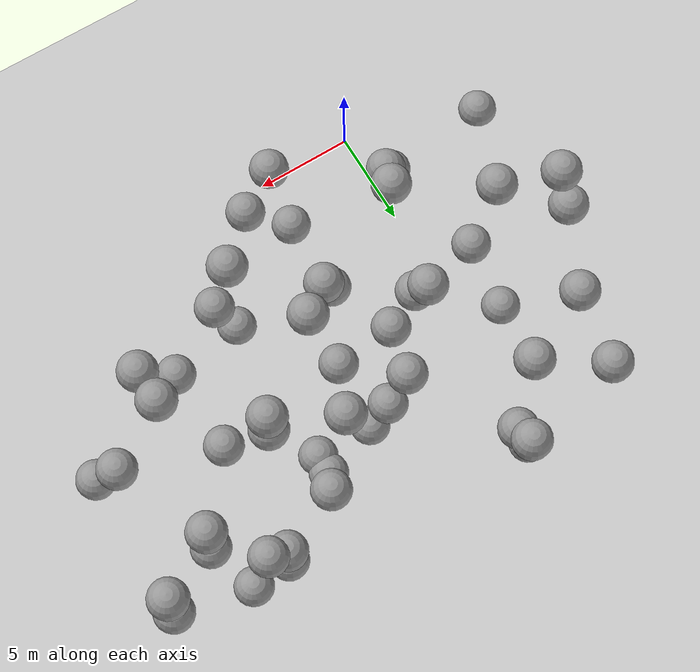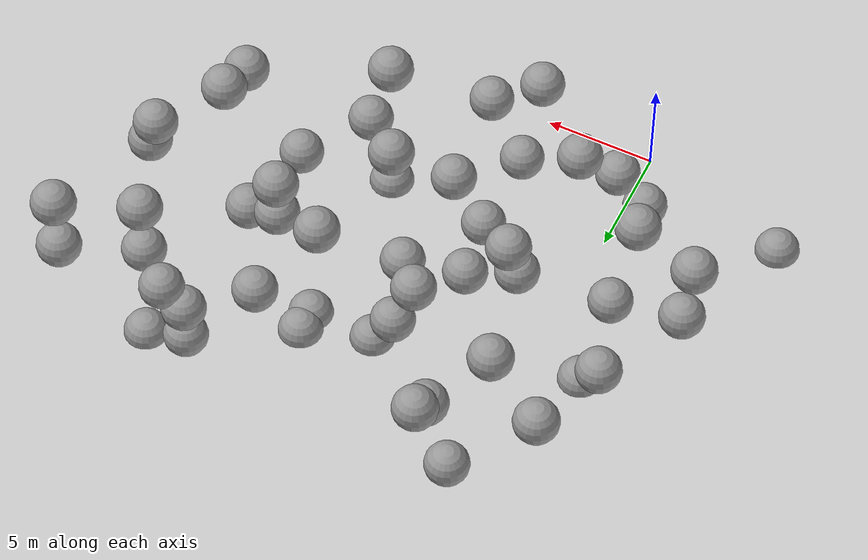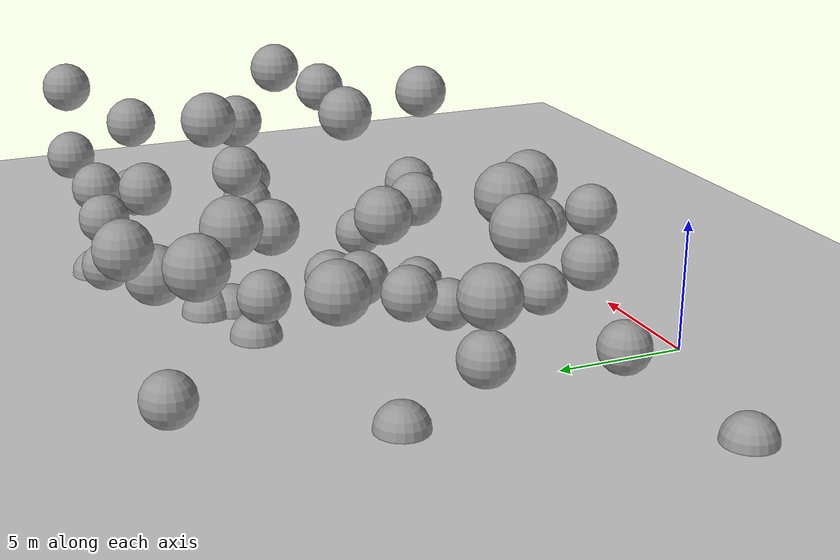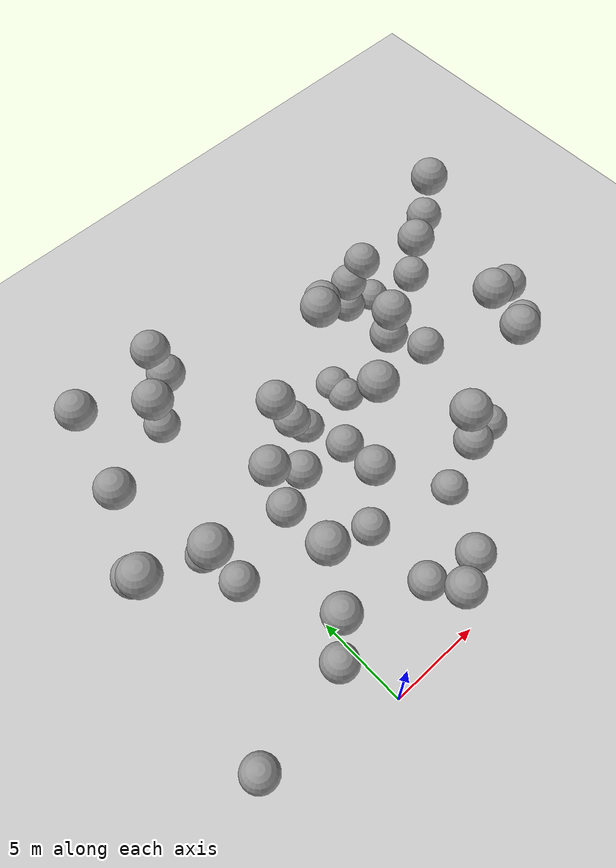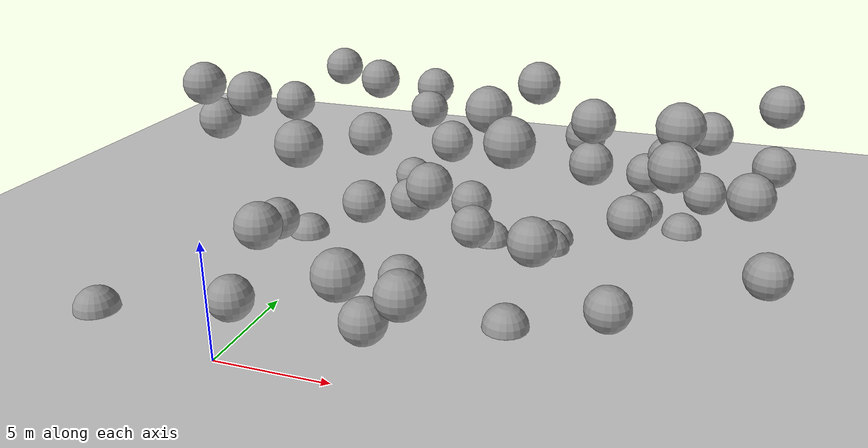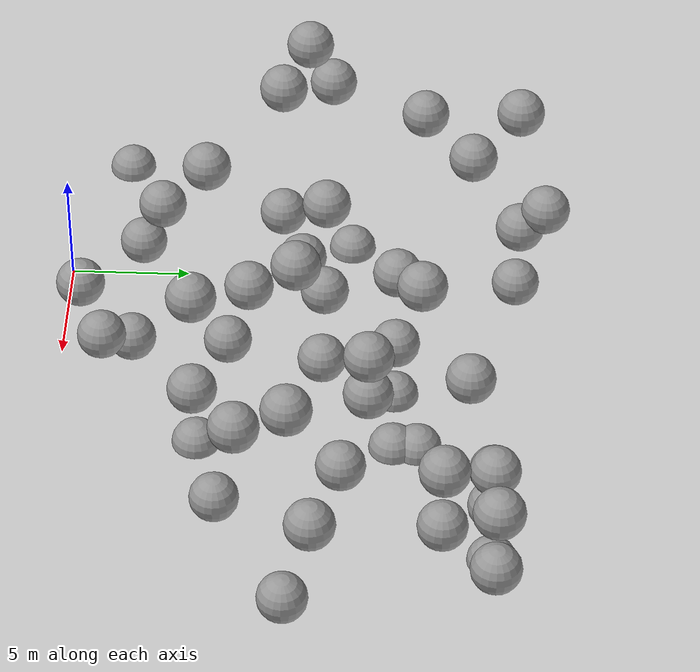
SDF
<sdf version="1.7">
 <world name="default">
  <model name="ground_plane">
   <static>1</static>
   <link name="link">
    <collision name="collision">
     <geometry><plane><normal>0 0 1</normal><size>100 100</size></plane></geometry>
     <surface>
      <contact><collide_bitmask>65535</collide_bitmask></contact>
      <friction><ode><mu>100</mu><mu2>50</mu2></ode></friction>
     </surface>
    </collision>
    <visual name="visual">
     <cast_shadows>0</cast_shadows>
     <geometry><plane><normal>0 0 1</normal><size>100 100</size></plane></geometry>
     <material>
      <script><uri>file://media/materials/scripts/gazebo.material</uri><name>Gazebo/Grey</name></script>
     </material>
    </visual>
   </link>
  </model>
  <model name="sphere_3">
   <static>1</static>
   <pose>16 10 8 0 0 0</pose>
   <link name="link">
    <inertial>
     <mass>418.87902047863906</mass>
     <inertia>
      <ixx>167.55160819145564</ixx>
      <iyy>167.55160819145564</iyy>
      <izz>167.55160819145564</izz>
      <ixy>0</ixy>
      <ixz>0</ixz>
      <iyz>0</iyz>
     </inertia>
    </inertial>
    <collision name="collision"><geometry><sphere><radius>1.0</radius></sphere></geometry></collision>
    <visual name="visual">
     <geometry><sphere><radius>1.0</radius></sphere></geometry>
     <material>
      <script><uri>file://media/materials/scripts/gazebo.material</uri><name>Gazebo/Grey</name></script>
     </material>
    </visual>
   </link>
  </model>
  <model name="sphere_7">
   <static>1</static>
   <pose>-4 15 6 0 0 0</pose>
   <link name="link">
    <inertial>
     <mass>418.87902047863906</mass>
     <inertia>
      <ixx>167.55160819145564</ixx>
      <iyy>167.55160819145564</iyy>
      <izz>167.55160819145564</izz>
      <ixy>0</ixy>
      <ixz>0</ixz>
      <iyz>0</iyz>
     </inertia>
    </inertial>
    <collision name="collision"><geometry><sphere><radius>1.0</radius></sphere></geometry></collision>
    <visual name="visual">
     <geometry><sphere><radius>1.0</radius></sphere></geometry>
     <material>
      <script><uri>file://media/materials/scripts/gazebo.material</uri><name>Gazebo/Grey</name></script>
     </material>
    </visual>
   </link>
  </model>
  <model name="sphere_9">
   <static>1</static>
   <pose>5 1 4 0 0 0</pose>
   <link name="link">
    <inertial>
     <mass>418.87902047863906</mass>
     <inertia>
      <ixx>167.55160819145564</ixx>
      <iyy>167.55160819145564</iyy>
      <izz>167.55160819145564</izz>
      <ixy>0</ixy>
      <ixz>0</ixz>
      <iyz>0</iyz>
     </inertia>
    </inertial>
    <collision name="collision"><geometry><sphere><radius>1.0</radius></sphere></geometry></collision>
    <visual name="visual">
     <geometry><sphere><radius>1.0</radius></sphere></geometry>
     <material>
      <script><uri>file://media/materials/scripts/gazebo.material</uri><name>Gazebo/Grey</name></script>
     </material>
    </visual>
   </link>
  </model>
  <model name="sphere_11">
   <static>1</static>
   <pose>2 10 3 0 0 0</pose>
   <link name="link">
    <inertial>
     <mass>418.87902047863906</mass>
     <inertia>
      <ixx>167.55160819145564</ixx>
      <iyy>167.55160819145564</iyy>
      <izz>167.55160819145564</izz>
      <ixy>0</ixy>
      <ixz>0</ixz>
      <iyz>0</iyz>
     </inertia>
    </inertial>
    <collision name="collision"><geometry><sphere><radius>1.0</radius></sphere></geometry></collision>
    <visual name="visual">
     <geometry><sphere><radius>1.0</radius></sphere></geometry>
     <material>
      <script><uri>file://media/materials/scripts/gazebo.material</uri><name>Gazebo/Grey</name></script>
     </material>
    </visual>
   </link>
  </model>
  <model name="sphere_16">
   <static>1</static>
   <pose>20 18 7 0 0 0</pose>
   <link name="link">
    <inertial>
     <mass>418.87902047863906</mass>
     <inertia>
      <ixx>167.55160819145564</ixx>
      <iyy>167.55160819145564</iyy>
      <izz>167.55160819145564</izz>
      <ixy>0</ixy>
      <ixz>0</ixz>
      <iyz>0</iyz>
     </inertia>
    </inertial>
    <collision name="collision"><geometry><sphere><radius>1.0</radius></sphere></geometry></collision>
    <visual name="visual">
     <geometry><sphere><radius>1.0</radius></sphere></geometry>
     <material>
      <script><uri>file://media/materials/scripts/gazebo.material</uri><name>Gazebo/Grey</name></script>
     </material>
    </visual>
   </link>
  </model>
  <model name="sphere_18">
   <static>1</static>
   <pose>9 15 8 0 0 0</pose>
   <link name="link">
    <inertial>
     <mass>418.87902047863906</mass>
     <inertia>
      <ixx>167.55160819145564</ixx>
      <iyy>167.55160819145564</iyy>
      <izz>167.55160819145564</izz>
      <ixy>0</ixy>
      <ixz>0</ixz>
      <iyz>0</iyz>
     </inertia>
    </inertial>
    <collision name="collision"><geometry><sphere><radius>1.0</radius></sphere></geometry></collision>
    <visual name="visual">
     <geometry><sphere><radius>1.0</radius></sphere></geometry>
     <material>
      <script><uri>file://media/materials/scripts/gazebo.material</uri><name>Gazebo/Grey</name></script>
     </material>
    </visual>
   </link>
  </model>
  <model name="sphere_23">
   <static>1</static>
   <pose>5 3 1 0 0 0</pose>
   <link name="link">
    <inertial>
     <mass>418.87902047863906</mass>
     <inertia>
      <ixx>167.55160819145564</ixx>
      <iyy>167.55160819145564</iyy>
      <izz>167.55160819145564</izz>
      <ixy>0</ixy>
      <ixz>0</ixz>
      <iyz>0</iyz>
     </inertia>
    </inertial>
    <collision name="collision"><geometry><sphere><radius>1.0</radius></sphere></geometry></collision>
    <visual name="visual">
     <geometry><sphere><radius>1.0</radius></sphere></geometry>
     <material>
      <script><uri>file://media/materials/scripts/gazebo.material</uri><name>Gazebo/Grey</name></script>
     </material>
    </visual>
   </link>
  </model>
  <model name="sphere_28">
   <static>1</static>
   <pose>5 7 1 0 0 0</pose>
   <link name="link">
    <inertial>
     <mass>418.87902047863906</mass>
     <inertia>
      <ixx>167.55160819145564</ixx>
      <iyy>167.55160819145564</iyy>
      <izz>167.55160819145564</izz>
      <ixy>0</ixy>
      <ixz>0</ixz>
      <iyz>0</iyz>
     </inertia>
    </inertial>
    <collision name="collision"><geometry><sphere><radius>1.0</radius></sphere></geometry></collision>
    <visual name="visual">
     <geometry><sphere><radius>1.0</radius></sphere></geometry>
     <material>
      <script><uri>file://media/materials/scripts/gazebo.material</uri><name>Gazebo/Grey</name></script>
     </material>
    </visual>
   </link>
  </model>
  <model name="sphere_31">
   <static>1</static>
   <pose>10 6 8 0 0 0</pose>
   <link name="link">
    <inertial>
     <mass>418.87902047863906</mass>
     <inertia>
      <ixx>167.55160819145564</ixx>
      <iyy>167.55160819145564</iyy>
      <izz>167.55160819145564</izz>
      <ixy>0</ixy>
      <ixz>0</ixz>
      <iyz>0</iyz>
     </inertia>
    </inertial>
    <collision name="collision"><geometry><sphere><radius>1.0</radius></sphere></geometry></collision>
    <visual name="visual">
     <geometry><sphere><radius>1.0</radius></sphere></geometry>
     <material>
      <script><uri>file://media/materials/scripts/gazebo.material</uri><name>Gazebo/Grey</name></script>
     </material>
    </visual>
   </link>
  </model>
  <model name="sphere_32">
   <static>1</static>
   <pose>-3 9 8 0 0 0</pose>
   <link name="link">
    <inertial>
     <mass>418.87902047863906</mass>
     <inertia>
      <ixx>167.55160819145564</ixx>
      <iyy>167.55160819145564</iyy>
      <izz>167.55160819145564</izz>
      <ixy>0</ixy>
      <ixz>0</ixz>
      <iyz>0</iyz>
     </inertia>
    </inertial>
    <collision name="collision"><geometry><sphere><radius>1.0</radius></sphere></geometry></collision>
    <visual name="visual">
     <geometry><sphere><radius>1.0</radius></sphere></geometry>
     <material>
      <script><uri>file://media/materials/scripts/gazebo.material</uri><name>Gazebo/Grey</name></script>
     </material>
    </visual>
   </link>
  </model>
  <model name="sphere_33">
   <static>1</static>
   <pose>19 11 5 0 0 0</pose>
   <link name="link">
    <inertial>
     <mass>418.87902047863906</mass>
     <inertia>
      <ixx>167.55160819145564</ixx>
      <iyy>167.55160819145564</iyy>
      <izz>167.55160819145564</izz>
      <ixy>0</ixy>
      <ixz>0</ixz>
      <iyz>0</iyz>
     </inertia>
    </inertial>
    <collision name="collision"><geometry><sphere><radius>1.0</radius></sphere></geometry></collision>
    <visual name="visual">
     <geometry><sphere><radius>1.0</radius></sphere></geometry>
     <material>
      <script><uri>file://media/materials/scripts/gazebo.material</uri><name>Gazebo/Grey</name></script>
     </material>
    </visual>
   </link>
  </model>
  <model name="sphere_36">
   <static>1</static>
   <pose>7 11 2 0 0 0</pose>
   <link name="link">
    <inertial>
     <mass>418.87902047863906</mass>
     <inertia>
      <ixx>167.55160819145564</ixx>
      <iyy>167.55160819145564</iyy>
      <izz>167.55160819145564</izz>
      <ixy>0</ixy>
      <ixz>0</ixz>
      <iyz>0</iyz>
     </inertia>
    </inertial>
    <collision name="collision"><geometry><sphere><radius>1.0</radius></sphere></geometry></collision>
    <visual name="visual">
     <geometry><sphere><radius>1.0</radius></sphere></geometry>
     <material>
      <script><uri>file://media/materials/scripts/gazebo.material</uri><name>Gazebo/Grey</name></script>
     </material>
    </visual>
   </link>
  </model>
  <model name="sphere_37">
   <static>1</static>
   <pose>2 19 5 0 0 0</pose>
   <link name="link">
    <inertial>
     <mass>418.87902047863906</mass>
     <inertia>
      <ixx>167.55160819145564</ixx>
      <iyy>167.55160819145564</iyy>
      <izz>167.55160819145564</izz>
      <ixy>0</ixy>
      <ixz>0</ixz>
      <iyz>0</iyz>
     </inertia>
    </inertial>
    <collision name="collision"><geometry><sphere><radius>1.0</radius></sphere></geometry></collision>
    <visual name="visual">
     <geometry><sphere><radius>1.0</radius></sphere></geometry>
     <material>
      <script><uri>file://media/materials/scripts/gazebo.material</uri><name>Gazebo/Grey</name></script>
     </material>
    </visual>
   </link>
  </model>
  <model name="sphere_38">
   <static>1</static>
   <pose>0 17 7 0 0 0</pose>
   <link name="link">
    <inertial>
     <mass>418.87902047863906</mass>
     <inertia>
      <ixx>167.55160819145564</ixx>
      <iyy>167.55160819145564</iyy>
      <izz>167.55160819145564</izz>
      <ixy>0</ixy>
      <ixz>0</ixz>
      <iyz>0</iyz>
     </inertia>
    </inertial>
    <collision name="collision"><geometry><sphere><radius>1.0</radius></sphere></geometry></collision>
    <visual name="visual">
     <geometry><sphere><radius>1.0</radius></sphere></geometry>
     <material>
      <script><uri>file://media/materials/scripts/gazebo.material</uri><name>Gazebo/Grey</name></script>
     </material>
    </visual>
   </link>
  </model>
  <model name="sphere_39">
   <static>1</static>
   <pose>17 16 3 0 0 0</pose>
   <link name="link">
    <inertial>
     <mass>418.87902047863906</mass>
     <inertia>
      <ixx>167.55160819145564</ixx>
      <iyy>167.55160819145564</iyy>
      <izz>167.55160819145564</izz>
      <ixy>0</ixy>
      <ixz>0</ixz>
      <iyz>0</iyz>
     </inertia>
    </inertial>
    <collision name="collision"><geometry><sphere><radius>1.0</radius></sphere></geometry></collision>
    <visual name="visual">
     <geometry><sphere><radius>1.0</radius></sphere></geometry>
     <material>
      <script><uri>file://media/materials/scripts/gazebo.material</uri><name>Gazebo/Grey</name></script>
     </material>
    </visual>
   </link>
  </model>
  <model name="sphere_42">
   <static>1</static>
   <pose>10 6 0 0 0 0</pose>
   <link name="link">
    <inertial>
     <mass>418.87902047863906</mass>
     <inertia>
      <ixx>167.55160819145564</ixx>
      <iyy>167.55160819145564</iyy>
      <izz>167.55160819145564</izz>
      <ixy>0</ixy>
      <ixz>0</ixz>
      <iyz>0</iyz>
     </inertia>
    </inertial>
    <collision name="collision"><geometry><sphere><radius>1.0</radius></sphere></geometry></collision>
    <visual name="visual">
     <geometry><sphere><radius>1.0</radius></sphere></geometry>
     <material>
      <script><uri>file://media/materials/scripts/gazebo.material</uri><name>Gazebo/Grey</name></script>
     </material>
    </visual>
   </link>
  </model>
  <model name="sphere_46">
   <static>1</static>
   <pose>6 14 2 0 0 0</pose>
   <link name="link">
    <inertial>
     <mass>418.87902047863906</mass>
     <inertia>
      <ixx>167.55160819145564</ixx>
      <iyy>167.55160819145564</iyy>
      <izz>167.55160819145564</izz>
      <ixy>0</ixy>
      <ixz>0</ixz>
      <iyz>0</iyz>
     </inertia>
    </inertial>
    <collision name="collision"><geometry><sphere><radius>1.0</radius></sphere></geometry></collision>
    <visual name="visual">
     <geometry><sphere><radius>1.0</radius></sphere></geometry>
     <material>
      <script><uri>file://media/materials/scripts/gazebo.material</uri><name>Gazebo/Grey</name></script>
     </material>
    </visual>
   </link>
  </model>
  <model name="sphere_52">
   <static>1</static>
   <pose>20 10 2 0 0 0</pose>
   <link name="link">
    <inertial>
     <mass>418.87902047863906</mass>
     <inertia>
      <ixx>167.55160819145564</ixx>
      <iyy>167.55160819145564</iyy>
      <izz>167.55160819145564</izz>
      <ixy>0</ixy>
      <ixz>0</ixz>
      <iyz>0</iyz>
     </inertia>
    </inertial>
    <collision name="collision"><geometry><sphere><radius>1.0</radius></sphere></geometry></collision>
    <visual name="visual">
     <geometry><sphere><radius>1.0</radius></sphere></geometry>
     <material>
      <script><uri>file://media/materials/scripts/gazebo.material</uri><name>Gazebo/Grey</name></script>
     </material>
    </visual>
   </link>
  </model>
  <model name="sphere_53">
   <static>1</static>
   <pose>2 20 6 0 0 0</pose>
   <link name="link">
    <inertial>
     <mass>418.87902047863906</mass>
     <inertia>
      <ixx>167.55160819145564</ixx>
      <iyy>167.55160819145564</iyy>
      <izz>167.55160819145564</izz>
      <ixy>0</ixy>
      <ixz>0</ixz>
      <iyz>0</iyz>
     </inertia>
    </inertial>
    <collision name="collision"><geometry><sphere><radius>1.0</radius></sphere></geometry></collision>
    <visual name="visual">
     <geometry><sphere><radius>1.0</radius></sphere></geometry>
     <material>
      <script><uri>file://media/materials/scripts/gazebo.material</uri><name>Gazebo/Grey</name></script>
     </material>
    </visual>
   </link>
  </model>
  <model name="sphere_56">
   <static>1</static>
   <pose>17 16 6 0 0 0</pose>
   <link name="link">
    <inertial>
     <mass>418.87902047863906</mass>
     <inertia>
      <ixx>167.55160819145564</ixx>
      <iyy>167.55160819145564</iyy>
      <izz>167.55160819145564</izz>
      <ixy>0</ixy>
      <ixz>0</ixz>
      <iyz>0</iyz>
     </inertia>
    </inertial>
    <collision name="collision"><geometry><sphere><radius>1.0</radius></sphere></geometry></collision>
    <visual name="visual">
     <geometry><sphere><radius>1.0</radius></sphere></geometry>
     <material>
      <script><uri>file://media/materials/scripts/gazebo.material</uri><name>Gazebo/Grey</name></script>
     </material>
    </visual>
   </link>
  </model>
  <model name="sphere_60">
   <static>1</static>
   <pose>11 17 5 0 0 0</pose>
   <link name="link">
    <inertial>
     <mass>418.87902047863906</mass>
     <inertia>
      <ixx>167.55160819145564</ixx>
      <iyy>167.55160819145564</iyy>
      <izz>167.55160819145564</izz>
      <ixy>0</ixy>
      <ixz>0</ixz>
      <iyz>0</iyz>
     </inertia>
    </inertial>
    <collision name="collision"><geometry><sphere><radius>1.0</radius></sphere></geometry></collision>
    <visual name="visual">
     <geometry><sphere><radius>1.0</radius></sphere></geometry>
     <material>
      <script><uri>file://media/materials/scripts/gazebo.material</uri><name>Gazebo/Grey</name></script>
     </material>
    </visual>
   </link>
  </model>
  <model name="sphere_72">
   <static>1</static>
   <pose>7 2 3 0 0 0</pose>
   <link name="link">
    <inertial>
     <mass>418.87902047863906</mass>
     <inertia>
      <ixx>167.55160819145564</ixx>
      <iyy>167.55160819145564</iyy>
      <izz>167.55160819145564</izz>
      <ixy>0</ixy>
      <ixz>0</ixz>
      <iyz>0</iyz>
     </inertia>
    </inertial>
    <collision name="collision"><geometry><sphere><radius>1.0</radius></sphere></geometry></collision>
    <visual name="visual">
     <geometry><sphere><radius>1.0</radius></sphere></geometry>
     <material>
      <script><uri>file://media/materials/scripts/gazebo.material</uri><name>Gazebo/Grey</name></script>
     </material>
    </visual>
   </link>
  </model>
  <model name="sphere_73">
   <static>1</static>
   <pose>7 14 0 0 0 0</pose>
   <link name="link">
    <inertial>
     <mass>418.87902047863906</mass>
     <inertia>
      <ixx>167.55160819145564</ixx>
      <iyy>167.55160819145564</iyy>
      <izz>167.55160819145564</izz>
      <ixy>0</ixy>
      <ixz>0</ixz>
      <iyz>0</iyz>
     </inertia>
    </inertial>
    <collision name="collision"><geometry><sphere><radius>1.0</radius></sphere></geometry></collision>
    <visual name="visual">
     <geometry><sphere><radius>1.0</radius></sphere></geometry>
     <material>
      <script><uri>file://media/materials/scripts/gazebo.material</uri><name>Gazebo/Grey</name></script>
     </material>
    </visual>
   </link>
  </model>
  <model name="sphere_74">
   <static>1</static>
   <pose>14 7 1 0 0 0</pose>
   <link name="link">
    <inertial>
     <mass>418.87902047863906</mass>
     <inertia>
      <ixx>167.55160819145564</ixx>
      <iyy>167.55160819145564</iyy>
      <izz>167.55160819145564</izz>
      <ixy>0</ixy>
      <ixz>0</ixz>
      <iyz>0</iyz>
     </inertia>
    </inertial>
    <collision name="collision"><geometry><sphere><radius>1.0</radius></sphere></geometry></collision>
    <visual name="visual">
     <geometry><sphere><radius>1.0</radius></sphere></geometry>
     <material>
      <script><uri>file://media/materials/scripts/gazebo.material</uri><name>Gazebo/Grey</name></script>
     </material>
    </visual>
   </link>
  </model>
  <model name="sphere_78">
   <static>1</static>
   <pose>12 13 5 0 0 0</pose>
   <link name="link">
    <inertial>
     <mass>418.87902047863906</mass>
     <inertia>
      <ixx>167.55160819145564</ixx>
      <iyy>167.55160819145564</iyy>
      <izz>167.55160819145564</izz>
      <ixy>0</ixy>
      <ixz>0</ixz>
      <iyz>0</iyz>
     </inertia>
    </inertial>
    <collision name="collision"><geometry><sphere><radius>1.0</radius></sphere></geometry></collision>
    <visual name="visual">
     <geometry><sphere><radius>1.0</radius></sphere></geometry>
     <material>
      <script><uri>file://media/materials/scripts/gazebo.material</uri><name>Gazebo/Grey</name></script>
     </material>
    </visual>
   </link>
  </model>
  <model name="sphere_79">
   <static>1</static>
   <pose>-3 19 7 0 0 0</pose>
   <link name="link">
    <inertial>
     <mass>418.87902047863906</mass>
     <inertia>
      <ixx>167.55160819145564</ixx>
      <iyy>167.55160819145564</iyy>
      <izz>167.55160819145564</izz>
      <ixy>0</ixy>
      <ixz>0</ixz>
      <iyz>0</iyz>
     </inertia>
    </inertial>
    <collision name="collision"><geometry><sphere><radius>1.0</radius></sphere></geometry></collision>
    <visual name="visual">
     <geometry><sphere><radius>1.0</radius></sphere></geometry>
     <material>
      <script><uri>file://media/materials/scripts/gazebo.material</uri><name>Gazebo/Grey</name></script>
     </material>
    </visual>
   </link>
  </model>
  <model name="sphere_81">
   <static>1</static>
   <pose>12 13 7 0 0 0</pose>
   <link name="link">
    <inertial>
     <mass>418.87902047863906</mass>
     <inertia>
      <ixx>167.55160819145564</ixx>
      <iyy>167.55160819145564</iyy>
      <izz>167.55160819145564</izz>
      <ixy>0</ixy>
      <ixz>0</ixz>
      <iyz>0</iyz>
     </inertia>
    </inertial>
    <collision name="collision"><geometry><sphere><radius>1.0</radius></sphere></geometry></collision>
    <visual name="visual">
     <geometry><sphere><radius>1.0</radius></sphere></geometry>
     <material>
      <script><uri>file://media/materials/scripts/gazebo.material</uri><name>Gazebo/Grey</name></script>
     </material>
    </visual>
   </link>
  </model>
  <model name="sphere_87">
   <static>1</static>
   <pose>-1 3 1 0 0 0</pose>
   <link name="link">
    <inertial>
     <mass>418.87902047863906</mass>
     <inertia>
      <ixx>167.55160819145564</ixx>
      <iyy>167.55160819145564</iyy>
      <izz>167.55160819145564</izz>
      <ixy>0</ixy>
      <ixz>0</ixz>
      <iyz>0</iyz>
     </inertia>
    </inertial>
    <collision name="collision"><geometry><sphere><radius>1.0</radius></sphere></geometry></collision>
    <visual name="visual">
     <geometry><sphere><radius>1.0</radius></sphere></geometry>
     <material>
      <script><uri>file://media/materials/scripts/gazebo.material</uri><name>Gazebo/Grey</name></script>
     </material>
    </visual>
   </link>
  </model>
  <model name="sphere_88">
   <static>1</static>
   <pose>5 14 5 0 0 0</pose>
   <link name="link">
    <inertial>
     <mass>418.87902047863906</mass>
     <inertia>
      <ixx>167.55160819145564</ixx>
      <iyy>167.55160819145564</iyy>
      <izz>167.55160819145564</izz>
      <ixy>0</ixy>
      <ixz>0</ixz>
      <iyz>0</iyz>
     </inertia>
    </inertial>
    <collision name="collision"><geometry><sphere><radius>1.0</radius></sphere></geometry></collision>
    <visual name="visual">
     <geometry><sphere><radius>1.0</radius></sphere></geometry>
     <material>
      <script><uri>file://media/materials/scripts/gazebo.material</uri><name>Gazebo/Grey</name></script>
     </material>
    </visual>
   </link>
  </model>
  <model name="sphere_92">
   <static>1</static>
   <pose>14 18 3 0 0 0</pose>
   <link name="link">
    <inertial>
     <mass>418.87902047863906</mass>
     <inertia>
      <ixx>167.55160819145564</ixx>
      <iyy>167.55160819145564</iyy>
      <izz>167.55160819145564</izz>
      <ixy>0</ixy>
      <ixz>0</ixz>
      <iyz>0</iyz>
     </inertia>
    </inertial>
    <collision name="collision"><geometry><sphere><radius>1.0</radius></sphere></geometry></collision>
    <visual name="visual">
     <geometry><sphere><radius>1.0</radius></sphere></geometry>
     <material>
      <script><uri>file://media/materials/scripts/gazebo.material</uri><name>Gazebo/Grey</name></script>
     </material>
    </visual>
   </link>
  </model>
  <model name="sphere_96">
   <static>1</static>
   <pose>-7 2 0 0 0 0</pose>
   <link name="link">
    <inertial>
     <mass>418.87902047863906</mass>
     <inertia>
      <ixx>167.55160819145564</ixx>
      <iyy>167.55160819145564</iyy>
      <izz>167.55160819145564</izz>
      <ixy>0</ixy>
      <ixz>0</ixz>
      <iyz>0</iyz>
     </inertia>
    </inertial>
    <collision name="collision"><geometry><sphere><radius>1.0</radius></sphere></geometry></collision>
    <visual name="visual">
     <geometry><sphere><radius>1.0</radius></sphere></geometry>
     <material>
      <script><uri>file://media/materials/scripts/gazebo.material</uri><name>Gazebo/Grey</name></script>
     </material>
    </visual>
   </link>
  </model>
  <model name="sphere_101">
   <static>1</static>
   <pose>16 18 0 0 0 0</pose>
   <link name="link">
    <inertial>
     <mass>418.87902047863906</mass>
     <inertia>
      <ixx>167.55160819145564</ixx>
      <iyy>167.55160819145564</iyy>
      <izz>167.55160819145564</izz>
      <ixy>0</ixy>
      <ixz>0</ixz>
      <iyz>0</iyz>
     </inertia>
    </inertial>
    <collision name="collision"><geometry><sphere><radius>1.0</radius></sphere></geometry></collision>
    <visual name="visual">
     <geometry><sphere><radius>1.0</radius></sphere></geometry>
     <material>
      <script><uri>file://media/materials/scripts/gazebo.material</uri><name>Gazebo/Grey</name></script>
     </material>
    </visual>
   </link>
  </model>
  <model name="sphere_103">
   <static>1</static>
   <pose>2 11 6 0 0 0</pose>
   <link name="link">
    <inertial>
     <mass>418.87902047863906</mass>
     <inertia>
      <ixx>167.55160819145564</ixx>
      <iyy>167.55160819145564</iyy>
      <izz>167.55160819145564</izz>
      <ixy>0</ixy>
      <ixz>0</ixz>
      <iyz>0</iyz>
     </inertia>
    </inertial>
    <collision name="collision"><geometry><sphere><radius>1.0</radius></sphere></geometry></collision>
    <visual name="visual">
     <geometry><sphere><radius>1.0</radius></sphere></geometry>
     <material>
      <script><uri>file://media/materials/scripts/gazebo.material</uri><name>Gazebo/Grey</name></script>
     </material>
    </visual>
   </link>
  </model>
  <model name="sphere_107">
   <static>1</static>
   <pose>15 18 4 0 0 0</pose>
   <link name="link">
    <inertial>
     <mass>418.87902047863906</mass>
     <inertia>
      <ixx>167.55160819145564</ixx>
      <iyy>167.55160819145564</iyy>
      <izz>167.55160819145564</izz>
      <ixy>0</ixy>
      <ixz>0</ixz>
      <iyz>0</iyz>
     </inertia>
    </inertial>
    <collision name="collision"><geometry><sphere><radius>1.0</radius></sphere></geometry></collision>
    <visual name="visual">
     <geometry><sphere><radius>1.0</radius></sphere></geometry>
     <material>
      <script><uri>file://media/materials/scripts/gazebo.material</uri><name>Gazebo/Grey</name></script>
     </material>
    </visual>
   </link>
  </model>
  <model name="sphere_108">
   <static>1</static>
   <pose>0 4 4 0 0 0</pose>
   <link name="link">
    <inertial>
     <mass>418.87902047863906</mass>
     <inertia>
      <ixx>167.55160819145564</ixx>
      <iyy>167.55160819145564</iyy>
      <izz>167.55160819145564</izz>
      <ixy>0</ixy>
      <ixz>0</ixz>
      <iyz>0</iyz>
     </inertia>
    </inertial>
    <collision name="collision"><geometry><sphere><radius>1.0</radius></sphere></geometry></collision>
    <visual name="visual">
     <geometry><sphere><radius>1.0</radius></sphere></geometry>
     <material>
      <script><uri>file://media/materials/scripts/gazebo.material</uri><name>Gazebo/Grey</name></script>
     </material>
    </visual>
   </link>
  </model>
  <model name="sphere_114">
   <static>1</static>
   <pose>10 15 0 0 0 0</pose>
   <link name="link">
    <inertial>
     <mass>418.87902047863906</mass>
     <inertia>
      <ixx>167.55160819145564</ixx>
      <iyy>167.55160819145564</iyy>
      <izz>167.55160819145564</izz>
      <ixy>0</ixy>
      <ixz>0</ixz>
      <iyz>0</iyz>
     </inertia>
    </inertial>
    <collision name="collision"><geometry><sphere><radius>1.0</radius></sphere></geometry></collision>
    <visual name="visual">
     <geometry><sphere><radius>1.0</radius></sphere></geometry>
     <material>
      <script><uri>file://media/materials/scripts/gazebo.material</uri><name>Gazebo/Grey</name></script>
     </material>
    </visual>
   </link>
  </model>
  <model name="sphere_116">
   <static>1</static>
   <pose>6 8 5 0 0 0</pose>
   <link name="link">
    <inertial>
     <mass>418.87902047863906</mass>
     <inertia>
      <ixx>167.55160819145564</ixx>
      <iyy>167.55160819145564</iyy>
      <izz>167.55160819145564</izz>
      <ixy>0</ixy>
      <ixz>0</ixz>
      <iyz>0</iyz>
     </inertia>
    </inertial>
    <collision name="collision"><geometry><sphere><radius>1.0</radius></sphere></geometry></collision>
    <visual name="visual">
     <geometry><sphere><radius>1.0</radius></sphere></geometry>
     <material>
      <script><uri>file://media/materials/scripts/gazebo.material</uri><name>Gazebo/Grey</name></script>
     </material>
    </visual>
   </link>
  </model>
  <model name="sphere_119">
   <static>1</static>
   <pose>1 6 7 0 0 0</pose>
   <link name="link">
    <inertial>
     <mass>418.87902047863906</mass>
     <inertia>
      <ixx>167.55160819145564</ixx>
      <iyy>167.55160819145564</iyy>
      <izz>167.55160819145564</izz>
      <ixy>0</ixy>
      <ixz>0</ixz>
      <iyz>0</iyz>
     </inertia>
    </inertial>
    <collision name="collision"><geometry><sphere><radius>1.0</radius></sphere></geometry></collision>
    <visual name="visual">
     <geometry><sphere><radius>1.0</radius></sphere></geometry>
     <material>
      <script><uri>file://media/materials/scripts/gazebo.material</uri><name>Gazebo/Grey</name></script>
     </material>
    </visual>
   </link>
  </model>
  <model name="sphere_123">
   <static>1</static>
   <pose>-2 12 0 0 0 0</pose>
   <link name="link">
    <inertial>
     <mass>418.87902047863906</mass>
     <inertia>
      <ixx>167.55160819145564</ixx>
      <iyy>167.55160819145564</iyy>
      <izz>167.55160819145564</izz>
      <ixy>0</ixy>
      <ixz>0</ixz>
      <iyz>0</iyz>
     </inertia>
    </inertial>
    <collision name="collision"><geometry><sphere><radius>1.0</radius></sphere></geometry></collision>
    <visual name="visual">
     <geometry><sphere><radius>1.0</radius></sphere></geometry>
     <material>
      <script><uri>file://media/materials/scripts/gazebo.material</uri><name>Gazebo/Grey</name></script>
     </material>
    </visual>
   </link>
  </model>
  <model name="sphere_132">
   <static>1</static>
   <pose>14 18 1 0 0 0</pose>
   <link name="link">
    <inertial>
     <mass>418.87902047863906</mass>
     <inertia>
      <ixx>167.55160819145564</ixx>
      <iyy>167.55160819145564</iyy>
      <izz>167.55160819145564</izz>
      <ixy>0</ixy>
      <ixz>0</ixz>
      <iyz>0</iyz>
     </inertia>
    </inertial>
    <collision name="collision"><geometry><sphere><radius>1.0</radius></sphere></geometry></collision>
    <visual name="visual">
     <geometry><sphere><radius>1.0</radius></sphere></geometry>
     <material>
      <script><uri>file://media/materials/scripts/gazebo.material</uri><name>Gazebo/Grey</name></script>
     </material>
    </visual>
   </link>
  </model>
  <model name="sphere_133">
   <static>1</static>
   <pose>20 18 4 0 0 0</pose>
   <link name="link">
    <inertial>
     <mass>418.87902047863906</mass>
     <inertia>
      <ixx>167.55160819145564</ixx>
      <iyy>167.55160819145564</iyy>
      <izz>167.55160819145564</izz>
      <ixy>0</ixy>
      <ixz>0</ixz>
      <iyz>0</iyz>
     </inertia>
    </inertial>
    <collision name="collision"><geometry><sphere><radius>1.0</radius></sphere></geometry></collision>
    <visual name="visual">
     <geometry><sphere><radius>1.0</radius></sphere></geometry>
     <material>
      <script><uri>file://media/materials/scripts/gazebo.material</uri><name>Gazebo/Grey</name></script>
     </material>
    </visual>
   </link>
  </model>
  <model name="sphere_135">
   <static>1</static>
   <pose>1 19 1 0 0 0</pose>
   <link name="link">
    <inertial>
     <mass>418.87902047863906</mass>
     <inertia>
      <ixx>167.55160819145564</ixx>
      <iyy>167.55160819145564</iyy>
      <izz>167.55160819145564</izz>
      <ixy>0</ixy>
      <ixz>0</ixz>
      <iyz>0</iyz>
     </inertia>
    </inertial>
    <collision name="collision"><geometry><sphere><radius>1.0</radius></sphere></geometry></collision>
    <visual name="visual">
     <geometry><sphere><radius>1.0</radius></sphere></geometry>
     <material>
      <script><uri>file://media/materials/scripts/gazebo.material</uri><name>Gazebo/Grey</name></script>
     </material>
    </visual>
   </link>
  </model>
  <model name="sphere_136">
   <static>1</static>
   <pose>10 14 0 0 0 0</pose>
   <link name="link">
    <inertial>
     <mass>418.87902047863906</mass>
     <inertia>
      <ixx>167.55160819145564</ixx>
      <iyy>167.55160819145564</iyy>
      <izz>167.55160819145564</izz>
      <ixy>0</ixy>
      <ixz>0</ixz>
      <iyz>0</iyz>
     </inertia>
    </inertial>
    <collision name="collision"><geometry><sphere><radius>1.0</radius></sphere></geometry></collision>
    <visual name="visual">
     <geometry><sphere><radius>1.0</radius></sphere></geometry>
     <material>
      <script><uri>file://media/materials/scripts/gazebo.material</uri><name>Gazebo/Grey</name></script>
     </material>
    </visual>
   </link>
  </model>
  <model name="sphere_137">
   <static>1</static>
   <pose>4 11 3 0 0 0</pose>
   <link name="link">
    <inertial>
     <mass>418.87902047863906</mass>
     <inertia>
      <ixx>167.55160819145564</ixx>
      <iyy>167.55160819145564</iyy>
      <izz>167.55160819145564</izz>
      <ixy>0</ixy>
      <ixz>0</ixz>
      <iyz>0</iyz>
     </inertia>
    </inertial>
    <collision name="collision"><geometry><sphere><radius>1.0</radius></sphere></geometry></collision>
    <visual name="visual">
     <geometry><sphere><radius>1.0</radius></sphere></geometry>
     <material>
      <script><uri>file://media/materials/scripts/gazebo.material</uri><name>Gazebo/Grey</name></script>
     </material>
    </visual>
   </link>
  </model>
  <model name="sphere_138">
   <static>1</static>
   <pose>11 6 4 0 0 0</pose>
   <link name="link">
    <inertial>
     <mass>418.87902047863906</mass>
     <inertia>
      <ixx>167.55160819145564</ixx>
      <iyy>167.55160819145564</iyy>
      <izz>167.55160819145564</izz>
      <ixy>0</ixy>
      <ixz>0</ixz>
      <iyz>0</iyz>
     </inertia>
    </inertial>
    <collision name="collision"><geometry><sphere><radius>1.0</radius></sphere></geometry></collision>
    <visual name="visual">
     <geometry><sphere><radius>1.0</radius></sphere></geometry>
     <material>
      <script><uri>file://media/materials/scripts/gazebo.material</uri><name>Gazebo/Grey</name></script>
     </material>
    </visual>
   </link>
  </model>
  <model name="sphere_139">
   <static>1</static>
   <pose>-2 9 2 0 0 0</pose>
   <link name="link">
    <inertial>
     <mass>418.87902047863906</mass>
     <inertia>
      <ixx>167.55160819145564</ixx>
      <iyy>167.55160819145564</iyy>
      <izz>167.55160819145564</izz>
      <ixy>0</ixy>
      <ixz>0</ixz>
      <iyz>0</iyz>
     </inertia>
    </inertial>
    <collision name="collision"><geometry><sphere><radius>1.0</radius></sphere></geometry></collision>
    <visual name="visual">
     <geometry><sphere><radius>1.0</radius></sphere></geometry>
     <material>
      <script><uri>file://media/materials/scripts/gazebo.material</uri><name>Gazebo/Grey</name></script>
     </material>
    </visual>
   </link>
  </model>
  <model name="sphere_141">
   <static>1</static>
   <pose>16 8 7 0 0 0</pose>
   <link name="link">
    <inertial>
     <mass>418.87902047863906</mass>
     <inertia>
      <ixx>167.55160819145564</ixx>
      <iyy>167.55160819145564</iyy>
      <izz>167.55160819145564</izz>
      <ixy>0</ixy>
      <ixz>0</ixz>
      <iyz>0</iyz>
     </inertia>
    </inertial>
    <collision name="collision"><geometry><sphere><radius>1.0</radius></sphere></geometry></collision>
    <visual name="visual">
     <geometry><sphere><radius>1.0</radius></sphere></geometry>
     <material>
      <script><uri>file://media/materials/scripts/gazebo.material</uri><name>Gazebo/Grey</name></script>
     </material>
    </visual>
   </link>
  </model>
  <model name="sphere_143">
   <static>1</static>
   <pose>-6 10 8 0 0 0</pose>
   <link name="link">
    <inertial>
     <mass>418.87902047863906</mass>
     <inertia>
      <ixx>167.55160819145564</ixx>
      <iyy>167.55160819145564</iyy>
      <izz>167.55160819145564</izz>
      <ixy>0</ixy>
      <ixz>0</ixz>
      <iyz>0</iyz>
     </inertia>
    </inertial>
    <collision name="collision"><geometry><sphere><radius>1.0</radius></sphere></geometry></collision>
    <visual name="visual">
     <geometry><sphere><radius>1.0</radius></sphere></geometry>
     <material>
      <script><uri>file://media/materials/scripts/gazebo.material</uri><name>Gazebo/Grey</name></script>
     </material>
    </visual>
   </link>
  </model>
  <model name="sphere_145">
   <static>1</static>
   <pose>-6 11 6 0 0 0</pose>
   <link name="link">
    <inertial>
     <mass>418.87902047863906</mass>
     <inertia>
      <ixx>167.55160819145564</ixx>
      <iyy>167.55160819145564</iyy>
      <izz>167.55160819145564</izz>
      <ixy>0</ixy>
      <ixz>0</ixz>
      <iyz>0</iyz>
     </inertia>
    </inertial>
    <collision name="collision"><geometry><sphere><radius>1.0</radius></sphere></geometry></collision>
    <visual name="visual">
     <geometry><sphere><radius>1.0</radius></sphere></geometry>
     <material>
      <script><uri>file://media/materials/scripts/gazebo.material</uri><name>Gazebo/Grey</name></script>
     </material>
    </visual>
   </link>
  </model>
  <model name="sphere_146">
   <static>1</static>
   <pose>14 12 3 0 0 0</pose>
   <link name="link">
    <inertial>
     <mass>418.87902047863906</mass>
     <inertia>
      <ixx>167.55160819145564</ixx>
      <iyy>167.55160819145564</iyy>
      <izz>167.55160819145564</izz>
      <ixy>0</ixy>
      <ixz>0</ixz>
      <iyz>0</iyz>
     </inertia>
    </inertial>
    <collision name="collision"><geometry><sphere><radius>1.0</radius></sphere></geometry></collision>
    <visual name="visual">
     <geometry><sphere><radius>1.0</radius></sphere></geometry>
     <material>
      <script><uri>file://media/materials/scripts/gazebo.material</uri><name>Gazebo/Grey</name></script>
     </material>
    </visual>
   </link>
  </model>
  <model name="sphere_150">
   <static>1</static>
   <pose>8 10 8 0 0 0</pose>
   <link name="link">
    <inertial>
     <mass>418.87902047863906</mass>
     <inertia>
      <ixx>167.55160819145564</ixx>
      <iyy>167.55160819145564</iyy>
      <izz>167.55160819145564</izz>
      <ixy>0</ixy>
      <ixz>0</ixz>
      <iyz>0</iyz>
     </inertia>
    </inertial>
    <collision name="collision"><geometry><sphere><radius>1.0</radius></sphere></geometry></collision>
    <visual name="visual">
     <geometry><sphere><radius>1.0</radius></sphere></geometry>
     <material>
      <script><uri>file://media/materials/scripts/gazebo.material</uri><name>Gazebo/Grey</name></script>
     </material>
    </visual>
   </link>
  </model>
 </world>
</sdf>
